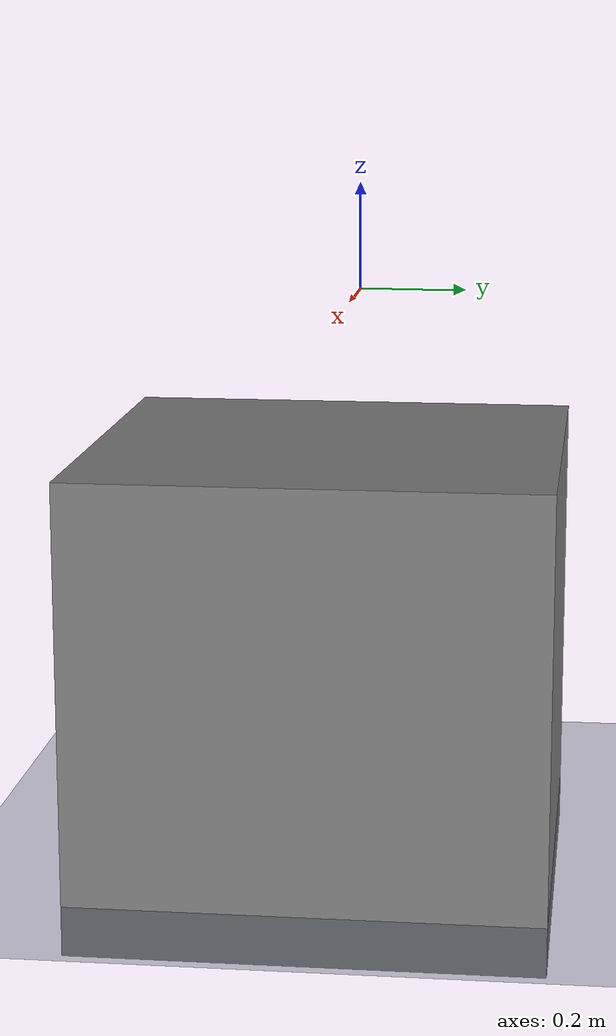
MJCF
<mujoco model="pusher_task">
	<asset>
		<texture builtin="gradient" height="256" rgb1=".9 .9 1." rgb2=".2 .3 .4" type="skybox" width="256"/>
		<texture builtin="checker" height="512" name="pusher_texplane" rgb1=".2 .3 .4" rgb2=".1 0.15 0.2" type="2d" width="512"/>
		<material name="pusher_floorplane" reflectance="0.5" texrepeat="1 1" texture="pusher_texplane" texuniform="true"/>
	</asset>
	<worldbody>
		<geom condim="3" material="pusher_floorplane" name="pusher_floor" pos="0 0 -0.913" size="3 3 .125" type="plane"/>
		<body name="pusher_table" pos="0.5 0 -0.6">
			<geom pos="0 0 0" size="0.4 0.4 0.4" type="box"/>
			<geom pos="0 0 0" size="0.399 0.399 0.399" type="box" conaffinity="0" contype="0" group="1" name="pusher_table_visual"/>
				<!-- Python code imports target visualization -->
		</body>
		<!-- Python code imports pusher object -->

		<light diffuse=".8 .8 .8" dir="0 -.15 -1" directional="false" pos="1 1 4.0" specular="0.3 0.3 0.3"/>
		<light diffuse=".8 .8 .8" dir="0 -.15 -1" directional="false" pos="-3. -3. 4.0" specular="0.3 0.3 0.3"/>
		<camera mode="fixed" name="pusher_camera1" pos="2.5 0 1.8" quat="0.653 0.271 0.271 0.653"/>
	</worldbody>
</mujoco>
